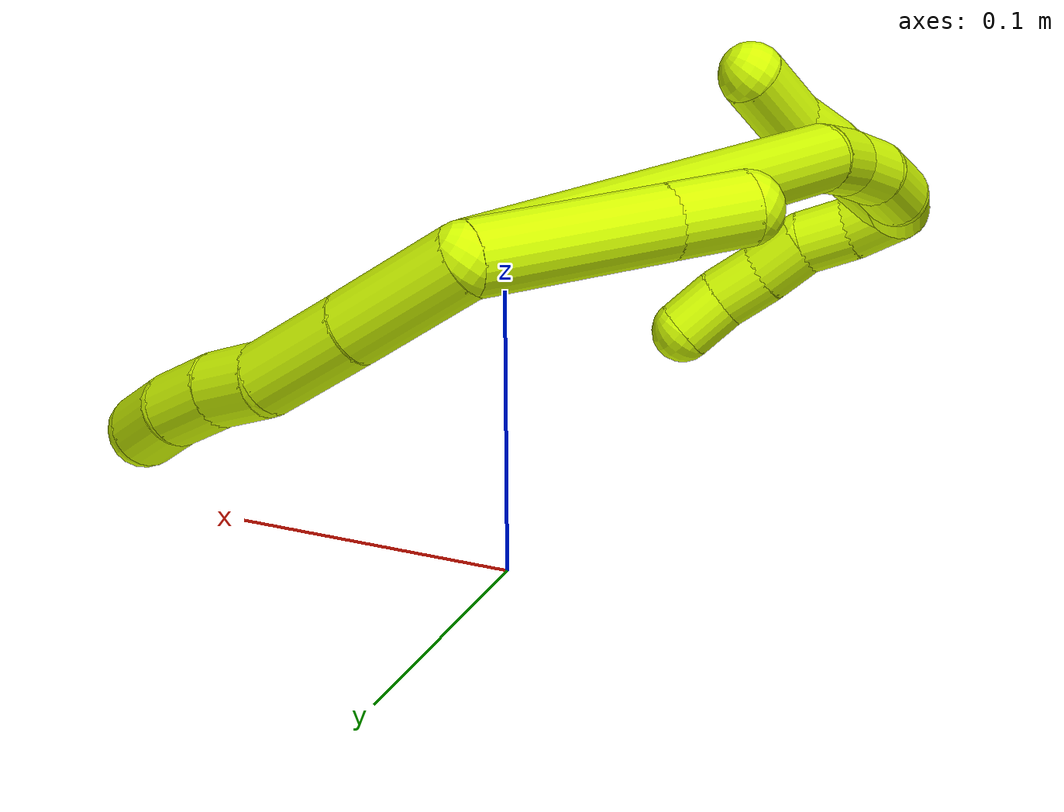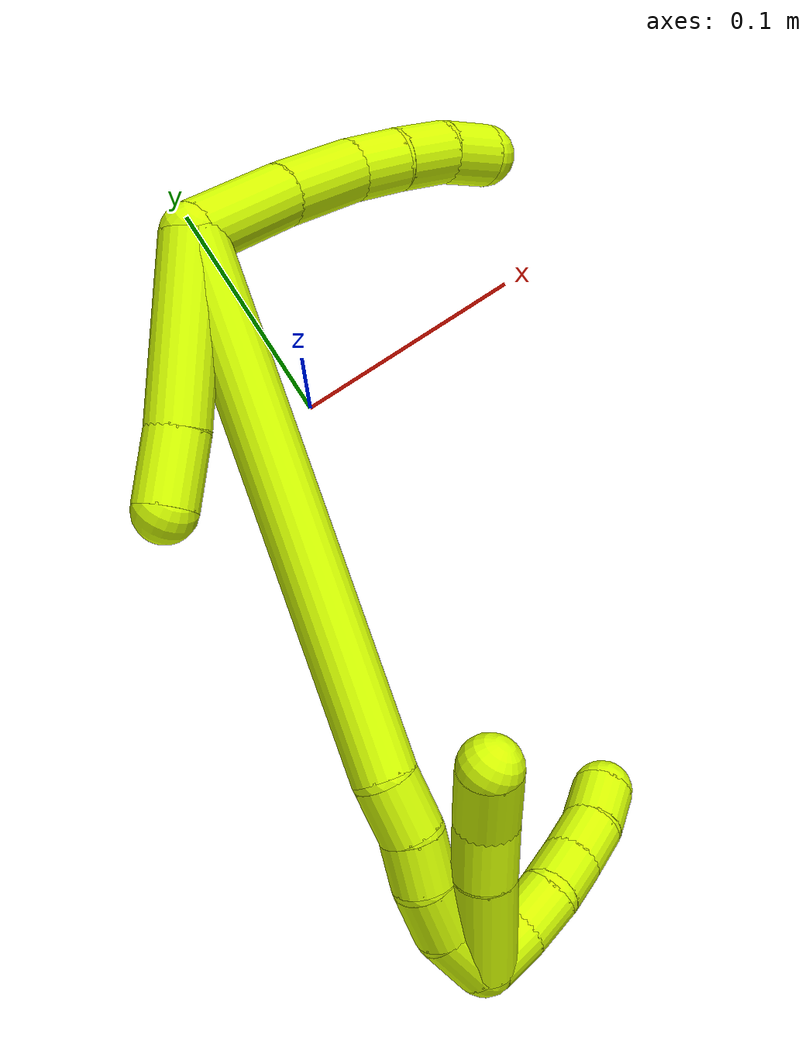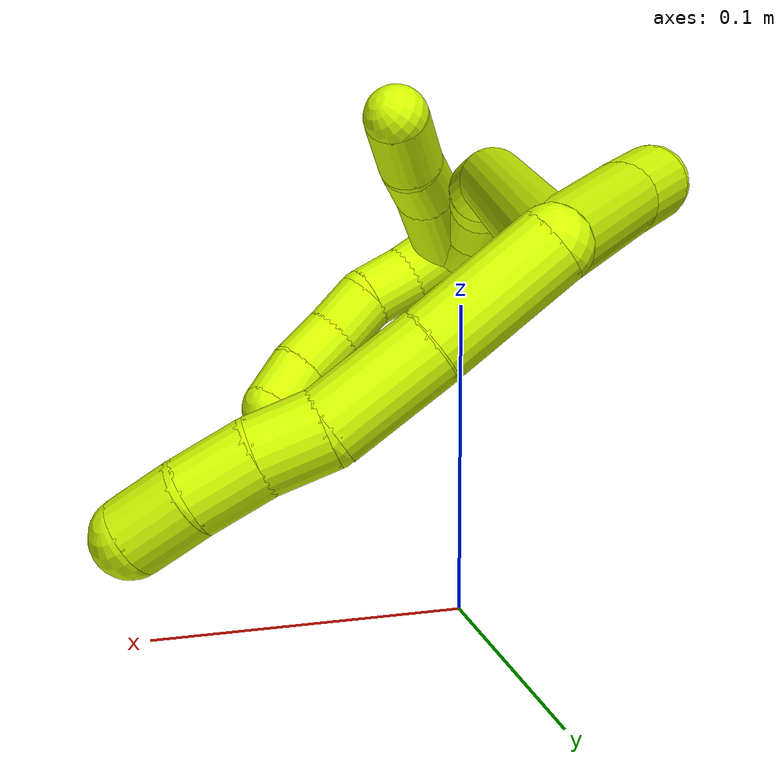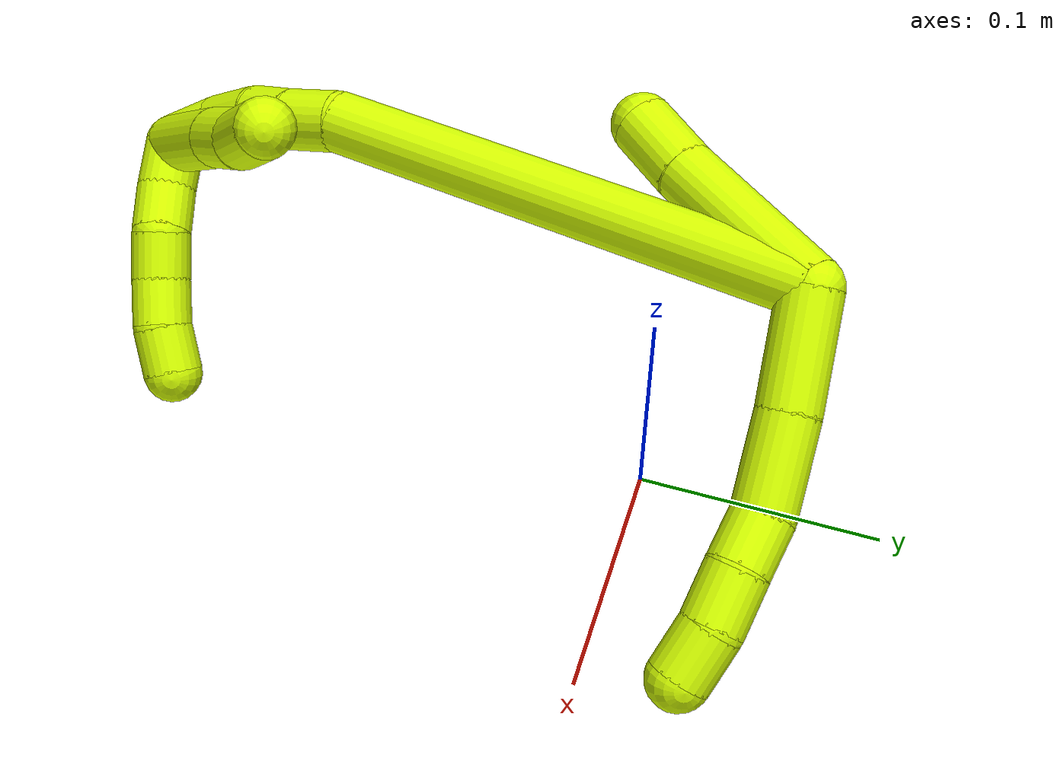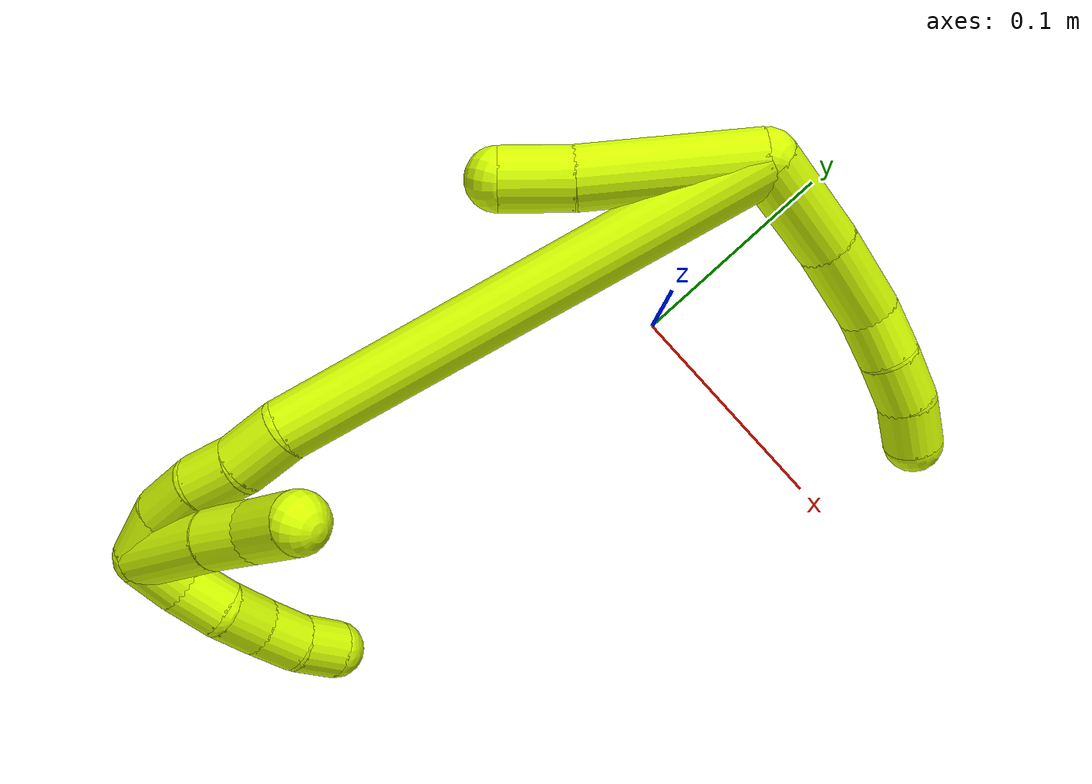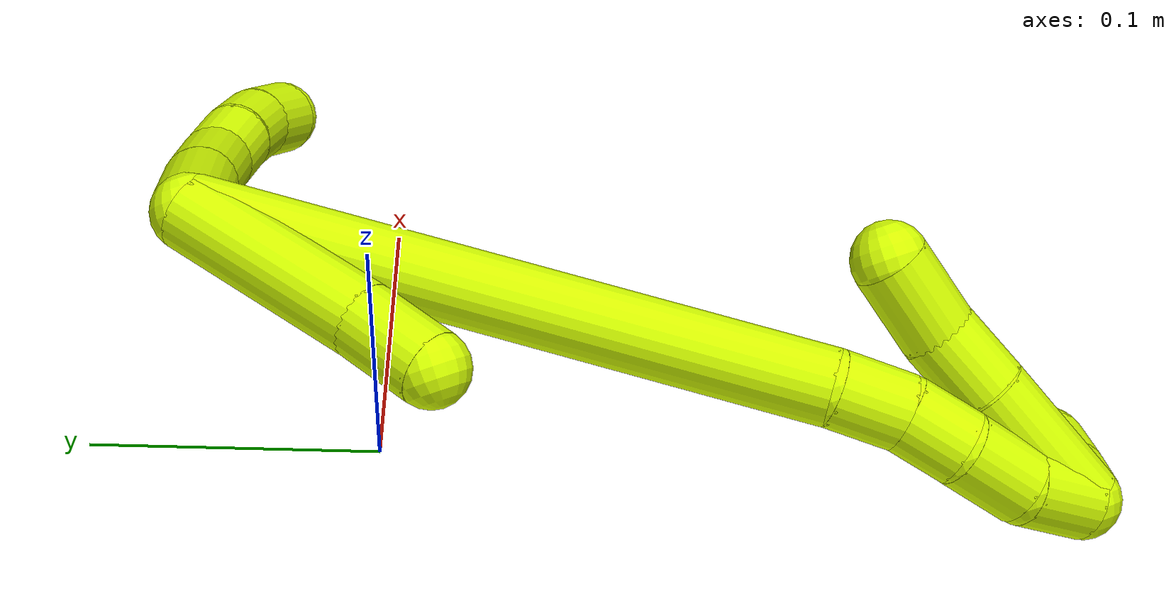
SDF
<sdf version="1.7">
 <world name="default">
  <model name="photoneo_s_sensor">
   <static>1</static>
   <pose>0 0 2 1.57079 1.57079 3.14159</pose>
   <link name="link">
    <inertial><mass>0.1</mass></inertial>
    <sensor name="sensor" type="depth">
     <update_rate>30</update_rate>
     <camera>
      <horizontal_fov>1.22</horizontal_fov>
      <image><width>1920</width><height>1200</height><format>B8G8R8</format></image>
      <clip><near>0.1</near><far>4</far></clip>
      <depth_camera><output>points</output></depth_camera>
     </camera>
     <plugin name="camera_plugin" filename="libgazebo_ros_depth_camera.so">
      <baseline>0.2</baseline>
      <alwaysOn>1</alwaysOn>
      <updateRate>0.0</updateRate>
      <cameraName>camera_ir</cameraName>
      <imageTopicName>/camera/color/image_raw</imageTopicName>
      <cameraInfoTopicName>/camera/color/camera_info</cameraInfoTopicName>
      <depthImageTopicName>/camera/depth/image_raw</depthImageTopicName>
      <depthImageCameraInfoTopicName>/camera/depth/camera_info</depthImageCameraInfoTopicName>
      <pointCloudTopicName>/camera/depth/points</pointCloudTopicName>
      <frameName>fr_optical</frameName>
      <pointCloudCutoff>0.1</pointCloudCutoff>
      <pointCloudCutoffMax>2.0</pointCloudCutoffMax>
      <distortionK1>0</distortionK1>
      <distortionK2>0</distortionK2>
      <distortionK3>0</distortionK3>
      <distortionT1>0</distortionT1>
      <distortionT2>0</distortionT2>
      <CxPrime>0</CxPrime>
      <Cx>0</Cx>
      <Cy>0</Cy>
      <focalLength>0</focalLength>
      <hackBaseline>0</hackBaseline>
     </plugin>
    </sensor>
   </link>
  </model>
  <model name="bin">
   <static>1</static>
   <link name="bottom">
    <collision name="collision-bottom">
     <pose>0 0 -0.01 0 -0 0</pose>
     <geometry><box><size>0.8 0.6 0.02</size></box></geometry>
     <surface>
      <friction><ode><mu>100</mu><mu2>100</mu2></ode></friction>
      <contact><collide_bitmask>65535</collide_bitmask></contact>
     </surface>
    </collision>
   </link>
   <link name="west_wall">
    <collision name="collision-west_wall">
     <pose>-0.41 0 0.1 0 -0 0</pose>
     <geometry><box><size>0.02 0.6 0.2</size></box></geometry>
     <surface>
      <friction><ode><mu>100</mu><mu2>100</mu2></ode></friction>
      <contact><collide_bitmask>65535</collide_bitmask></contact>
     </surface>
    </collision>
   </link>
   <link name="east_wall">
    <collision name="collision-east_wall">
     <pose>0.41 0 0.1 0 -0 0</pose>
     <geometry><box><size>0.02 0.6 0.2</size></box></geometry>
     <surface>
      <friction><ode><mu>100</mu><mu2>100</mu2></ode></friction>
      <contact><collide_bitmask>65535</collide_bitmask></contact>
     </surface>
    </collision>
   </link>
   <link name="south_wall">
    <collision name="collision-south_wall">
     <pose>0 -0.31 0.1 0 -0 0</pose>
     <geometry><box><size>0.8 0.02 0.2</size></box></geometry>
     <surface>
      <friction><ode><mu>100</mu><mu2>100</mu2></ode></friction>
      <contact><collide_bitmask>65535</collide_bitmask></contact>
     </surface>
    </collision>
   </link>
   <link name="north_wall">
    <collision name="collision-north_wall">
     <pose>0 0.31 0.1 0 -0 0</pose>
     <geometry><box><size>0.8 0.02 0.2</size></box></geometry>
     <surface>
      <friction><ode><mu>100</mu><mu2>100</mu2></ode></friction>
      <contact><collide_bitmask>65535</collide_bitmask></contact>
     </surface>
    </collision>
   </link>
  </model>
  <model name="15">
   <static>0</static>
   <link name="15">
    <collision name="collision-cylinder-e_1_2_8">
     <pose>-0.009588 0.020048 -0.006084 -1.86545 -0.429211 0.571751</pose>
     <geometry><cylinder><radius>0.0125</radius><length>0.046081</length></cylinder></geometry>
     <surface>
      <friction><ode><mu>1.16</mu><mu2>1.16</mu2><slip1>0</slip1><slip2>0</slip2></ode></friction>
      <contact><ode><kp>1e+06</kp><kd>1</kd><max_vel>0</max_vel><min_depth>0.001</min_depth></ode></contact>
     </surface>
    </collision>
    <visual name="visual-cylinder-e_1_2_8">
     <pose>-0.009588 0.020048 -0.006084 -1.86545 -0.429211 0.571751</pose>
     <geometry><cylinder><radius>0.0125</radius><length>0.046081</length></cylinder></geometry>
     <material><ambient>0.835294 1 0 1</ambient></material>
    </visual>
    <collision name="collision-cylinder-e_2_8_9">
     <pose>-0.028085 0.056119 -0.016881 -1.85683 -0.489995 0.64495</pose>
     <geometry><cylinder><radius>0.0125</radius><length>0.037858</length></cylinder></geometry>
     <surface>
      <friction><ode><mu>1.16</mu><mu2>1.16</mu2><slip1>0</slip1><slip2>0</slip2></ode></friction>
      <contact><ode><kp>1e+06</kp><kd>1</kd><max_vel>0</max_vel><min_depth>0.001</min_depth></ode></contact>
     </surface>
    </collision>
    <visual name="visual-cylinder-e_2_8_9">
     <pose>-0.028085 0.056119 -0.016881 -1.85683 -0.489995 0.64495</pose>
     <geometry><cylinder><radius>0.0125</radius><length>0.037858</length></cylinder></geometry>
     <material><ambient>0.835294 1 0 1</ambient></material>
    </visual>
    <collision name="collision-cylinder-e_3_9_10">
     <pose>-0.043997 0.079238 -0.02544 -2.06759 -0.714653 1.12023</pose>
     <geometry><cylinder><radius>0.0125</radius><length>0.021374</length></cylinder></geometry>
     <surface>
      <friction><ode><mu>1.16</mu><mu2>1.16</mu2><slip1>0</slip1><slip2>0</slip2></ode></friction>
      <contact><ode><kp>1e+06</kp><kd>1</kd><max_vel>0</max_vel><min_depth>0.001</min_depth></ode></contact>
     </surface>
    </collision>
    <visual name="visual-cylinder-e_3_9_10">
     <pose>-0.043997 0.079238 -0.02544 -2.06759 -0.714653 1.12023</pose>
     <geometry><cylinder><radius>0.0125</radius><length>0.021374</length></cylinder></geometry>
     <material><ambient>0.835294 1 0 1</ambient></material>
    </visual>
    <collision name="collision-cylinder-e_4_10_11">
     <pose>-0.058179 0.094815 -0.032096 -1.89065 -0.676887 0.907</pose>
     <geometry><cylinder><radius>0.0125</radius><length>0.02292</length></cylinder></geometry>
     <surface>
      <friction><ode><mu>1.16</mu><mu2>1.16</mu2><slip1>0</slip1><slip2>0</slip2></ode></friction>
      <contact><ode><kp>1e+06</kp><kd>1</kd><max_vel>0</max_vel><min_depth>0.001</min_depth></ode></contact>
     </surface>
    </collision>
    <visual name="visual-cylinder-e_4_10_11">
     <pose>-0.058179 0.094815 -0.032096 -1.89065 -0.676887 0.907</pose>
     <geometry><cylinder><radius>0.0125</radius><length>0.02292</length></cylinder></geometry>
     <material><ambient>0.835294 1 0 1</ambient></material>
    </visual>
    <collision name="collision-cylinder-e_5_11_6">
     <pose>-0.073133 0.110864 -0.035744 -1.68119 -0.795804 0.877879</pose>
     <geometry><cylinder><radius>0.0125</radius><length>0.021767</length></cylinder></geometry>
     <surface>
      <friction><ode><mu>1.16</mu><mu2>1.16</mu2><slip1>0</slip1><slip2>0</slip2></ode></friction>
      <contact><ode><kp>1e+06</kp><kd>1</kd><max_vel>0</max_vel><min_depth>0.001</min_depth></ode></contact>
     </surface>
    </collision>
    <visual name="visual-cylinder-e_5_11_6">
     <pose>-0.073133 0.110864 -0.035744 -1.68119 -0.795804 0.877879</pose>
     <geometry><cylinder><radius>0.0125</radius><length>0.021767</length></cylinder></geometry>
     <material><ambient>0.835294 1 0 1</ambient></material>
    </visual>
    <collision name="collision-cylinder-e_1_2_12">
     <pose>-0.014039 -0.020625 0.025482 0.68045 -0.404611 -0.14496</pose>
     <geometry><cylinder><radius>0.0125</radius><length>0.071325</length></cylinder></geometry>
     <surface>
      <friction><ode><mu>1.16</mu><mu2>1.16</mu2><slip1>0</slip1><slip2>0</slip2></ode></friction>
      <contact><ode><kp>1e+06</kp><kd>1</kd><max_vel>0</max_vel><min_depth>0.001</min_depth></ode></contact>
     </surface>
    </collision>
    <visual name="visual-cylinder-e_1_2_12">
     <pose>-0.014039 -0.020625 0.025482 0.68045 -0.404611 -0.14496</pose>
     <geometry><cylinder><radius>0.0125</radius><length>0.071325</length></cylinder></geometry>
     <material><ambient>0.835294 1 0 1</ambient></material>
    </visual>
    <collision name="collision-cylinder-e_2_12_5">
     <pose>-0.032638 -0.050024 0.061346 0.701579 -0.323655 -0.119336</pose>
     <geometry><cylinder><radius>0.0125</radius><length>0.028675</length></cylinder></geometry>
     <surface>
      <friction><ode><mu>1.16</mu><mu2>1.16</mu2><slip1>0</slip1><slip2>0</slip2></ode></friction>
      <contact><ode><kp>1e+06</kp><kd>1</kd><max_vel>0</max_vel><min_depth>0.001</min_depth></ode></contact>
     </surface>
    </collision>
    <visual name="visual-cylinder-e_2_12_5">
     <pose>-0.032638 -0.050024 0.061346 0.701579 -0.323655 -0.119336</pose>
     <geometry><cylinder><radius>0.0125</radius><length>0.028675</length></cylinder></geometry>
     <material><ambient>0.835294 1 0 1</ambient></material>
    </visual>
    <collision name="collision-cylinder-e_1_2_13">
     <pose>-0.075256 -0.040499 0.057921 0.610192 -0.816772 -0.270879</pose>
     <geometry><cylinder><radius>0.0125</radius><length>0.20648</length></cylinder></geometry>
     <surface>
      <friction><ode><mu>1.16</mu><mu2>1.16</mu2><slip1>0</slip1><slip2>0</slip2></ode></friction>
      <contact><ode><kp>1e+06</kp><kd>1</kd><max_vel>0</max_vel><min_depth>0.001</min_depth></ode></contact>
     </surface>
    </collision>
    <visual name="visual-cylinder-e_1_2_13">
     <pose>-0.075256 -0.040499 0.057921 0.610192 -0.816772 -0.270879</pose>
     <geometry><cylinder><radius>0.0125</radius><length>0.20648</length></cylinder></geometry>
     <material><ambient>0.835294 1 0 1</ambient></material>
    </visual>
    <collision name="collision-cylinder-e_2_13_14">
     <pose>-0.159717 -0.082719 0.122926 0.238362 -0.901063 -0.115718</pose>
     <geometry><cylinder><radius>0.0125</radius><length>0.023485</length></cylinder></geometry>
     <surface>
      <friction><ode><mu>1.16</mu><mu2>1.16</mu2><slip1>0</slip1><slip2>0</slip2></ode></friction>
      <contact><ode><kp>1e+06</kp><kd>1</kd><max_vel>0</max_vel><min_depth>0.001</min_depth></ode></contact>
     </surface>
    </collision>
    <visual name="visual-cylinder-e_2_13_14">
     <pose>-0.159717 -0.082719 0.122926 0.238362 -0.901063 -0.115718</pose>
     <geometry><cylinder><radius>0.0125</radius><length>0.023485</length></cylinder></geometry>
     <material><ambient>0.835294 1 0 1</ambient></material>
    </visual>
    <collision name="collision-cylinder-e_3_14_15">
     <pose>-0.175704 -0.085763 0.137959 0.164958 -0.699487 -0.060285</pose>
     <geometry><cylinder><radius>0.0125</radius><length>0.021065</length></cylinder></geometry>
     <surface>
      <friction><ode><mu>1.16</mu><mu2>1.16</mu2><slip1>0</slip1><slip2>0</slip2></ode></friction>
      <contact><ode><kp>1e+06</kp><kd>1</kd><max_vel>0</max_vel><min_depth>0.001</min_depth></ode></contact>
     </surface>
    </collision>
    <visual name="visual-cylinder-e_3_14_15">
     <pose>-0.175704 -0.085763 0.137959 0.164958 -0.699487 -0.060285</pose>
     <geometry><cylinder><radius>0.0125</radius><length>0.021065</length></cylinder></geometry>
     <material><ambient>0.835294 1 0 1</ambient></material>
    </visual>
    <collision name="collision-cylinder-e_4_15_16">
     <pose>-0.191026 -0.085931 0.154612 -0.132069 -0.771652 0.05371</pose>
     <geometry><cylinder><radius>0.0125</radius><length>0.024498</length></cylinder></geometry>
     <surface>
      <friction><ode><mu>1.16</mu><mu2>1.16</mu2><slip1>0</slip1><slip2>0</slip2></ode></friction>
      <contact><ode><kp>1e+06</kp><kd>1</kd><max_vel>0</max_vel><min_depth>0.001</min_depth></ode></contact>
     </surface>
    </collision>
    <visual name="visual-cylinder-e_4_15_16">
     <pose>-0.191026 -0.085931 0.154612 -0.132069 -0.771652 0.05371</pose>
     <geometry><cylinder><radius>0.0125</radius><length>0.024498</length></cylinder></geometry>
     <material><ambient>0.835294 1 0 1</ambient></material>
    </visual>
    <collision name="collision-cylinder-e_5_16_1">
     <pose>-0.210254 -0.0824 0.168783 -0.409727 -1.06194 0.242824</pose>
     <geometry><cylinder><radius>0.0125</radius><length>0.024473</length></cylinder></geometry>
     <surface>
      <friction><ode><mu>1.16</mu><mu2>1.16</mu2><slip1>0</slip1><slip2>0</slip2></ode></friction>
      <contact><ode><kp>1e+06</kp><kd>1</kd><max_vel>0</max_vel><min_depth>0.001</min_depth></ode></contact>
     </surface>
    </collision>
    <visual name="visual-cylinder-e_5_16_1">
     <pose>-0.210254 -0.0824 0.168783 -0.409727 -1.06194 0.242824</pose>
     <geometry><cylinder><radius>0.0125</radius><length>0.024473</length></cylinder></geometry>
     <material><ambient>0.835294 1 0 1</ambient></material>
    </visual>
    <collision name="collision-cylinder-e_1_1_17">
     <pose>-0.210399 -0.082024 0.153207 3.0469 0.462573 2.7445</pose>
     <geometry><cylinder><radius>0.0125</radius><length>0.047242</length></cylinder></geometry>
     <surface>
      <friction><ode><mu>1.16</mu><mu2>1.16</mu2><slip1>0</slip1><slip2>0</slip2></ode></friction>
      <contact><ode><kp>1e+06</kp><kd>1</kd><max_vel>0</max_vel><min_depth>0.001</min_depth></ode></contact>
     </surface>
    </collision>
    <visual name="visual-cylinder-e_1_1_17">
     <pose>-0.210399 -0.082024 0.153207 3.0469 0.462573 2.7445</pose>
     <geometry><cylinder><radius>0.0125</radius><length>0.047242</length></cylinder></geometry>
     <material><ambient>0.835294 1 0 1</ambient></material>
    </visual>
    <collision name="collision-cylinder-e_2_17_18">
     <pose>-0.194619 -0.084112 0.121081 3.13353 0.441582 3.10567</pose>
     <geometry><cylinder><radius>0.0125</radius><length>0.024517</length></cylinder></geometry>
     <surface>
      <friction><ode><mu>1.16</mu><mu2>1.16</mu2><slip1>0</slip1><slip2>0</slip2></ode></friction>
      <contact><ode><kp>1e+06</kp><kd>1</kd><max_vel>0</max_vel><min_depth>0.001</min_depth></ode></contact>
     </surface>
    </collision>
    <visual name="visual-cylinder-e_2_17_18">
     <pose>-0.194619 -0.084112 0.121081 3.13353 0.441582 3.10567</pose>
     <geometry><cylinder><radius>0.0125</radius><length>0.024517</length></cylinder></geometry>
     <material><ambient>0.835294 1 0 1</ambient></material>
    </visual>
    <collision name="collision-cylinder-e_3_18_4">
     <pose>-0.183948 -0.087034 0.097276 2.92253 0.394923 2.13641</pose>
     <geometry><cylinder><radius>0.0125</radius><length>0.028241</length></cylinder></geometry>
     <surface>
      <friction><ode><mu>1.16</mu><mu2>1.16</mu2><slip1>0</slip1><slip2>0</slip2></ode></friction>
      <contact><ode><kp>1e+06</kp><kd>1</kd><max_vel>0</max_vel><min_depth>0.001</min_depth></ode></contact>
     </surface>
    </collision>
    <visual name="visual-cylinder-e_3_18_4">
     <pose>-0.183948 -0.087034 0.097276 2.92253 0.394923 2.13641</pose>
     <geometry><cylinder><radius>0.0125</radius><length>0.028241</length></cylinder></geometry>
     <material><ambient>0.835294 1 0 1</ambient></material>
    </visual>
    <collision name="collision-cylinder-e_1_1_19">
     <pose>-0.224972 -0.071638 0.170589 -1.98244 -0.414947 0.622292</pose>
     <geometry><cylinder><radius>0.0125</radius><length>0.02</length></cylinder></geometry>
     <surface>
      <friction><ode><mu>1.16</mu><mu2>1.16</mu2><slip1>0</slip1><slip2>0</slip2></ode></friction>
      <contact><ode><kp>1e+06</kp><kd>1</kd><max_vel>0</max_vel><min_depth>0.001</min_depth></ode></contact>
     </surface>
    </collision>
    <visual name="visual-cylinder-e_1_1_19">
     <pose>-0.224972 -0.071638 0.170589 -1.98244 -0.414947 0.622292</pose>
     <geometry><cylinder><radius>0.0125</radius><length>0.02</length></cylinder></geometry>
     <material><ambient>0.835294 1 0 1</ambient></material>
    </visual>
    <collision name="collision-cylinder-e_2_19_20">
     <pose>-0.232041 -0.055253 0.161751 -2.14526 -0.308689 0.557191</pose>
     <geometry><cylinder><radius>0.0125</radius><length>0.02</length></cylinder></geometry>
     <surface>
      <friction><ode><mu>1.16</mu><mu2>1.16</mu2><slip1>0</slip1><slip2>0</slip2></ode></friction>
      <contact><ode><kp>1e+06</kp><kd>1</kd><max_vel>0</max_vel><min_depth>0.001</min_depth></ode></contact>
     </surface>
    </collision>
    <visual name="visual-cylinder-e_2_19_20">
     <pose>-0.232041 -0.055253 0.161751 -2.14526 -0.308689 0.557191</pose>
     <geometry><cylinder><radius>0.0125</radius><length>0.02</length></cylinder></geometry>
     <material><ambient>0.835294 1 0 1</ambient></material>
    </visual>
    <collision name="collision-cylinder-e_3_20_21">
     <pose>-0.237625 -0.037833 0.154394 -1.79813 -0.257374 0.322679</pose>
     <geometry><cylinder><radius>0.0125</radius><length>0.02</length></cylinder></geometry>
     <surface>
      <friction><ode><mu>1.16</mu><mu2>1.16</mu2><slip1>0</slip1><slip2>0</slip2></ode></friction>
      <contact><ode><kp>1e+06</kp><kd>1</kd><max_vel>0</max_vel><min_depth>0.001</min_depth></ode></contact>
     </surface>
    </collision>
    <visual name="visual-cylinder-e_3_20_21">
     <pose>-0.237625 -0.037833 0.154394 -1.79813 -0.257374 0.322679</pose>
     <geometry><cylinder><radius>0.0125</radius><length>0.02</length></cylinder></geometry>
     <material><ambient>0.835294 1 0 1</ambient></material>
    </visual>
    <collision name="collision-cylinder-e_4_21_22">
     <pose>-0.24225 -0.019151 0.149065 -1.89868 -0.20951 0.291558</pose>
     <geometry><cylinder><radius>0.0125</radius><length>0.02</length></cylinder></geometry>
     <surface>
      <friction><ode><mu>1.16</mu><mu2>1.16</mu2><slip1>0</slip1><slip2>0</slip2></ode></friction>
      <contact><ode><kp>1e+06</kp><kd>1</kd><max_vel>0</max_vel><min_depth>0.001</min_depth></ode></contact>
     </surface>
    </collision>
    <visual name="visual-cylinder-e_4_21_22">
     <pose>-0.24225 -0.019151 0.149065 -1.89868 -0.20951 0.291558</pose>
     <geometry><cylinder><radius>0.0125</radius><length>0.02</length></cylinder></geometry>
     <material><ambient>0.835294 1 0 1</ambient></material>
    </visual>
    <collision name="collision-cylinder-e_5_22_3">
     <pose>-0.244601 -0.000171 0.143582 -1.80635 -0.027115 0.034392</pose>
     <geometry><cylinder><radius>0.0125</radius><length>0.02</length></cylinder></geometry>
     <surface>
      <friction><ode><mu>1.16</mu><mu2>1.16</mu2><slip1>0</slip1><slip2>0</slip2></ode></friction>
      <contact><ode><kp>1e+06</kp><kd>1</kd><max_vel>0</max_vel><min_depth>0.001</min_depth></ode></contact>
     </surface>
    </collision>
    <visual name="visual-cylinder-e_5_22_3">
     <pose>-0.244601 -0.000171 0.143582 -1.80635 -0.027115 0.034392</pose>
     <geometry><cylinder><radius>0.0125</radius><length>0.02</length></cylinder></geometry>
     <material><ambient>0.835294 1 0 1</ambient></material>
    </visual>
    <collision name="collision-sphere-3">
     <pose>-0.244872 0.009549 0.141249 0 -0 0</pose>
     <geometry><sphere><radius>0.0125</radius></sphere></geometry>
     <surface>
      <friction><ode><mu>1.16</mu><mu2>1.16</mu2><slip1>0</slip1><slip2>0</slip2></ode></friction>
      <contact><ode><kp>1e+06</kp><kd>1</kd><max_vel>0</max_vel><min_depth>0.001</min_depth></ode></contact>
     </surface>
    </collision>
    <visual name="visual-sphere-3">
     <pose>-0.244872 0.009549 0.141249 0 -0 0</pose>
     <geometry><sphere><radius>0.0125</radius></sphere></geometry>
     <material><ambient>0.835294 1 0 1</ambient></material>
    </visual>
    <collision name="collision-sphere-22">
     <pose>-0.24433 -0.009891 0.145915 0 -0 0</pose>
     <geometry><sphere><radius>0.0125</radius></sphere></geometry>
     <surface>
      <friction><ode><mu>1.16</mu><mu2>1.16</mu2><slip1>0</slip1><slip2>0</slip2></ode></friction>
      <contact><ode><kp>1e+06</kp><kd>1</kd><max_vel>0</max_vel><min_depth>0.001</min_depth></ode></contact>
     </surface>
    </collision>
    <visual name="visual-sphere-22">
     <pose>-0.24433 -0.009891 0.145915 0 -0 0</pose>
     <geometry><sphere><radius>0.0125</radius></sphere></geometry>
     <material><ambient>0.835294 1 0 1</ambient></material>
    </visual>
    <collision name="collision-sphere-21">
     <pose>-0.24017 -0.028412 0.152215 0 -0 0</pose>
     <geometry><sphere><radius>0.0125</radius></sphere></geometry>
     <surface>
      <friction><ode><mu>1.16</mu><mu2>1.16</mu2><slip1>0</slip1><slip2>0</slip2></ode></friction>
      <contact><ode><kp>1e+06</kp><kd>1</kd><max_vel>0</max_vel><min_depth>0.001</min_depth></ode></contact>
     </surface>
    </collision>
    <visual name="visual-sphere-21">
     <pose>-0.24017 -0.028412 0.152215 0 -0 0</pose>
     <geometry><sphere><radius>0.0125</radius></sphere></geometry>
     <material><ambient>0.835294 1 0 1</ambient></material>
    </visual>
    <collision name="collision-sphere-20">
     <pose>-0.235079 -0.047255 0.156574 0 -0 0</pose>
     <geometry><sphere><radius>0.0125</radius></sphere></geometry>
     <surface>
      <friction><ode><mu>1.16</mu><mu2>1.16</mu2><slip1>0</slip1><slip2>0</slip2></ode></friction>
      <contact><ode><kp>1e+06</kp><kd>1</kd><max_vel>0</max_vel><min_depth>0.001</min_depth></ode></contact>
     </surface>
    </collision>
    <visual name="visual-sphere-20">
     <pose>-0.235079 -0.047255 0.156574 0 -0 0</pose>
     <geometry><sphere><radius>0.0125</radius></sphere></geometry>
     <material><ambient>0.835294 1 0 1</ambient></material>
    </visual>
    <collision name="collision-sphere-19">
     <pose>-0.229003 -0.063251 0.166928 0 -0 0</pose>
     <geometry><sphere><radius>0.0125</radius></sphere></geometry>
     <surface>
      <friction><ode><mu>1.16</mu><mu2>1.16</mu2><slip1>0</slip1><slip2>0</slip2></ode></friction>
      <contact><ode><kp>1e+06</kp><kd>1</kd><max_vel>0</max_vel><min_depth>0.001</min_depth></ode></contact>
     </surface>
    </collision>
    <visual name="visual-sphere-19">
     <pose>-0.229003 -0.063251 0.166928 0 -0 0</pose>
     <geometry><sphere><radius>0.0125</radius></sphere></geometry>
     <material><ambient>0.835294 1 0 1</ambient></material>
    </visual>
    <collision name="collision-sphere-6">
     <pose>-0.080908 0.118433 -0.036583 0 -0 0</pose>
     <geometry><sphere><radius>0.0125</radius></sphere></geometry>
     <surface>
      <friction><ode><mu>1.16</mu><mu2>1.16</mu2><slip1>0</slip1><slip2>0</slip2></ode></friction>
      <contact><ode><kp>1e+06</kp><kd>1</kd><max_vel>0</max_vel><min_depth>0.001</min_depth></ode></contact>
     </surface>
    </collision>
    <visual name="visual-sphere-6">
     <pose>-0.080908 0.118433 -0.036583 0 -0 0</pose>
     <geometry><sphere><radius>0.0125</radius></sphere></geometry>
     <material><ambient>0.835294 1 0 1</ambient></material>
    </visual>
    <collision name="collision-sphere-11">
     <pose>-0.065358 0.103295 -0.034905 0 -0 0</pose>
     <geometry><sphere><radius>0.0125</radius></sphere></geometry>
     <surface>
      <friction><ode><mu>1.16</mu><mu2>1.16</mu2><slip1>0</slip1><slip2>0</slip2></ode></friction>
      <contact><ode><kp>1e+06</kp><kd>1</kd><max_vel>0</max_vel><min_depth>0.001</min_depth></ode></contact>
     </surface>
    </collision>
    <visual name="visual-sphere-11">
     <pose>-0.065358 0.103295 -0.034905 0 -0 0</pose>
     <geometry><sphere><radius>0.0125</radius></sphere></geometry>
     <material><ambient>0.835294 1 0 1</ambient></material>
    </visual>
    <collision name="collision-sphere-10">
     <pose>-0.051001 0.086334 -0.029288 0 -0 0</pose>
     <geometry><sphere><radius>0.0125</radius></sphere></geometry>
     <surface>
      <friction><ode><mu>1.16</mu><mu2>1.16</mu2><slip1>0</slip1><slip2>0</slip2></ode></friction>
      <contact><ode><kp>1e+06</kp><kd>1</kd><max_vel>0</max_vel><min_depth>0.001</min_depth></ode></contact>
     </surface>
    </collision>
    <visual name="visual-sphere-10">
     <pose>-0.051001 0.086334 -0.029288 0 -0 0</pose>
     <geometry><sphere><radius>0.0125</radius></sphere></geometry>
     <material><ambient>0.835294 1 0 1</ambient></material>
    </visual>
    <collision name="collision-sphere-9">
     <pose>-0.036994 0.072142 -0.021593 0 -0 0</pose>
     <geometry><sphere><radius>0.0125</radius></sphere></geometry>
     <surface>
      <friction><ode><mu>1.16</mu><mu2>1.16</mu2><slip1>0</slip1><slip2>0</slip2></ode></friction>
      <contact><ode><kp>1e+06</kp><kd>1</kd><max_vel>0</max_vel><min_depth>0.001</min_depth></ode></contact>
     </surface>
    </collision>
    <visual name="visual-sphere-9">
     <pose>-0.036994 0.072142 -0.021593 0 -0 0</pose>
     <geometry><sphere><radius>0.0125</radius></sphere></geometry>
     <material><ambient>0.835294 1 0 1</ambient></material>
    </visual>
    <collision name="collision-sphere-2">
     <geometry><sphere><radius>0.0125</radius></sphere></geometry>
     <surface>
      <friction><ode><mu>1.16</mu><mu2>1.16</mu2><slip1>0</slip1><slip2>0</slip2></ode></friction>
      <contact><ode><kp>1e+06</kp><kd>1</kd><max_vel>0</max_vel><min_depth>0.001</min_depth></ode></contact>
     </surface>
    </collision>
    <visual name="visual-sphere-2">
     <geometry><sphere><radius>0.0125</radius></sphere></geometry>
     <material><ambient>0.835294 1 0 1</ambient></material>
    </visual>
    <collision name="collision-sphere-8">
     <pose>-0.019177 0.040095 -0.012168 0 -0 0</pose>
     <geometry><sphere><radius>0.0125</radius></sphere></geometry>
     <surface>
      <friction><ode><mu>1.16</mu><mu2>1.16</mu2><slip1>0</slip1><slip2>0</slip2></ode></friction>
      <contact><ode><kp>1e+06</kp><kd>1</kd><max_vel>0</max_vel><min_depth>0.001</min_depth></ode></contact>
     </surface>
    </collision>
    <visual name="visual-sphere-8">
     <pose>-0.019177 0.040095 -0.012168 0 -0 0</pose>
     <geometry><sphere><radius>0.0125</radius></sphere></geometry>
     <material><ambient>0.835294 1 0 1</ambient></material>
    </visual>
    <collision name="collision-sphere-12">
     <pose>-0.028078 -0.04125 0.050964 0 -0 0</pose>
     <geometry><sphere><radius>0.0125</radius></sphere></geometry>
     <surface>
      <friction><ode><mu>1.16</mu><mu2>1.16</mu2><slip1>0</slip1><slip2>0</slip2></ode></friction>
      <contact><ode><kp>1e+06</kp><kd>1</kd><max_vel>0</max_vel><min_depth>0.001</min_depth></ode></contact>
     </surface>
    </collision>
    <visual name="visual-sphere-12">
     <pose>-0.028078 -0.04125 0.050964 0 -0 0</pose>
     <geometry><sphere><radius>0.0125</radius></sphere></geometry>
     <material><ambient>0.835294 1 0 1</ambient></material>
    </visual>
    <collision name="collision-sphere-5">
     <pose>-0.037198 -0.058797 0.071729 0 -0 0</pose>
     <geometry><sphere><radius>0.0125</radius></sphere></geometry>
     <surface>
      <friction><ode><mu>1.16</mu><mu2>1.16</mu2><slip1>0</slip1><slip2>0</slip2></ode></friction>
      <contact><ode><kp>1e+06</kp><kd>1</kd><max_vel>0</max_vel><min_depth>0.001</min_depth></ode></contact>
     </surface>
    </collision>
    <visual name="visual-sphere-5">
     <pose>-0.037198 -0.058797 0.071729 0 -0 0</pose>
     <geometry><sphere><radius>0.0125</radius></sphere></geometry>
     <material><ambient>0.835294 1 0 1</ambient></material>
    </visual>
    <collision name="collision-sphere-13">
     <pose>-0.150511 -0.080998 0.115843 0 -0 0</pose>
     <geometry><sphere><radius>0.0125</radius></sphere></geometry>
     <surface>
      <friction><ode><mu>1.16</mu><mu2>1.16</mu2><slip1>0</slip1><slip2>0</slip2></ode></friction>
      <contact><ode><kp>1e+06</kp><kd>1</kd><max_vel>0</max_vel><min_depth>0.001</min_depth></ode></contact>
     </surface>
    </collision>
    <visual name="visual-sphere-13">
     <pose>-0.150511 -0.080998 0.115843 0 -0 0</pose>
     <geometry><sphere><radius>0.0125</radius></sphere></geometry>
     <material><ambient>0.835294 1 0 1</ambient></material>
    </visual>
    <collision name="collision-sphere-14">
     <pose>-0.168923 -0.08444 0.130009 0 -0 0</pose>
     <geometry><sphere><radius>0.0125</radius></sphere></geometry>
     <surface>
      <friction><ode><mu>1.16</mu><mu2>1.16</mu2><slip1>0</slip1><slip2>0</slip2></ode></friction>
      <contact><ode><kp>1e+06</kp><kd>1</kd><max_vel>0</max_vel><min_depth>0.001</min_depth></ode></contact>
     </surface>
    </collision>
    <visual name="visual-sphere-14">
     <pose>-0.168923 -0.08444 0.130009 0 -0 0</pose>
     <geometry><sphere><radius>0.0125</radius></sphere></geometry>
     <material><ambient>0.835294 1 0 1</ambient></material>
    </visual>
    <collision name="collision-sphere-15">
     <pose>-0.182485 -0.087087 0.145909 0 -0 0</pose>
     <geometry><sphere><radius>0.0125</radius></sphere></geometry>
     <surface>
      <friction><ode><mu>1.16</mu><mu2>1.16</mu2><slip1>0</slip1><slip2>0</slip2></ode></friction>
      <contact><ode><kp>1e+06</kp><kd>1</kd><max_vel>0</max_vel><min_depth>0.001</min_depth></ode></contact>
     </surface>
    </collision>
    <visual name="visual-sphere-15">
     <pose>-0.182485 -0.087087 0.145909 0 -0 0</pose>
     <geometry><sphere><radius>0.0125</radius></sphere></geometry>
     <material><ambient>0.835294 1 0 1</ambient></material>
    </visual>
    <collision name="collision-sphere-16">
     <pose>-0.199568 -0.084775 0.163315 0 -0 0</pose>
     <geometry><sphere><radius>0.0125</radius></sphere></geometry>
     <surface>
      <friction><ode><mu>1.16</mu><mu2>1.16</mu2><slip1>0</slip1><slip2>0</slip2></ode></friction>
      <contact><ode><kp>1e+06</kp><kd>1</kd><max_vel>0</max_vel><min_depth>0.001</min_depth></ode></contact>
     </surface>
    </collision>
    <visual name="visual-sphere-16">
     <pose>-0.199568 -0.084775 0.163315 0 -0 0</pose>
     <geometry><sphere><radius>0.0125</radius></sphere></geometry>
     <material><ambient>0.835294 1 0 1</ambient></material>
    </visual>
    <collision name="collision-sphere-1">
     <pose>-0.22094 -0.080025 0.174251 0 -0 0</pose>
     <geometry><sphere><radius>0.0125</radius></sphere></geometry>
     <surface>
      <friction><ode><mu>1.16</mu><mu2>1.16</mu2><slip1>0</slip1><slip2>0</slip2></ode></friction>
      <contact><ode><kp>1e+06</kp><kd>1</kd><max_vel>0</max_vel><min_depth>0.001</min_depth></ode></contact>
     </surface>
    </collision>
    <visual name="visual-sphere-1">
     <pose>-0.22094 -0.080025 0.174251 0 -0 0</pose>
     <geometry><sphere><radius>0.0125</radius></sphere></geometry>
     <material><ambient>0.835294 1 0 1</ambient></material>
    </visual>
    <collision name="collision-sphere-18">
     <pose>-0.18938 -0.084201 0.109999 0 -0 0</pose>
     <geometry><sphere><radius>0.0125</radius></sphere></geometry>
     <surface>
      <friction><ode><mu>1.16</mu><mu2>1.16</mu2><slip1>0</slip1><slip2>0</slip2></ode></friction>
      <contact><ode><kp>1e+06</kp><kd>1</kd><max_vel>0</max_vel><min_depth>0.001</min_depth></ode></contact>
     </surface>
    </collision>
    <visual name="visual-sphere-18">
     <pose>-0.18938 -0.084201 0.109999 0 -0 0</pose>
     <geometry><sphere><radius>0.0125</radius></sphere></geometry>
     <material><ambient>0.835294 1 0 1</ambient></material>
    </visual>
    <collision name="collision-sphere-17">
     <pose>-0.199858 -0.084022 0.132163 0 -0 0</pose>
     <geometry><sphere><radius>0.0125</radius></sphere></geometry>
     <surface>
      <friction><ode><mu>1.16</mu><mu2>1.16</mu2><slip1>0</slip1><slip2>0</slip2></ode></friction>
      <contact><ode><kp>1e+06</kp><kd>1</kd><max_vel>0</max_vel><min_depth>0.001</min_depth></ode></contact>
     </surface>
    </collision>
    <visual name="visual-sphere-17">
     <pose>-0.199858 -0.084022 0.132163 0 -0 0</pose>
     <geometry><sphere><radius>0.0125</radius></sphere></geometry>
     <material><ambient>0.835294 1 0 1</ambient></material>
    </visual>
    <collision name="collision-sphere-4">
     <pose>-0.178515 -0.089866 0.084554 0 -0 0</pose>
     <geometry><sphere><radius>0.0125</radius></sphere></geometry>
     <surface>
      <friction><ode><mu>1.16</mu><mu2>1.16</mu2><slip1>0</slip1><slip2>0</slip2></ode></friction>
      <contact><ode><kp>1e+06</kp><kd>1</kd><max_vel>0</max_vel><min_depth>0.001</min_depth></ode></contact>
     </surface>
    </collision>
    <visual name="visual-sphere-4">
     <pose>-0.178515 -0.089866 0.084554 0 -0 0</pose>
     <geometry><sphere><radius>0.0125</radius></sphere></geometry>
     <material><ambient>0.835294 1 0 1</ambient></material>
    </visual>
    <inertial>
     <pose>-0.111547 -0.029182 0.073082 0 -0 0</pose>
     <mass>0.75</mass>
     <inertia>
      <ixx>0.00039</ixx>
      <ixy>0</ixy>
      <ixz>0</ixz>
      <iyy>0.000604</iyy>
      <iyz>0</iyz>
      <izz>0.000862</izz>
     </inertia>
    </inertial>
   </link>
   <pose>-0.011042 0.053321 0.1299 -2.21435 -0.108751 2.09674</pose>
  </model>
 </world>
</sdf>
